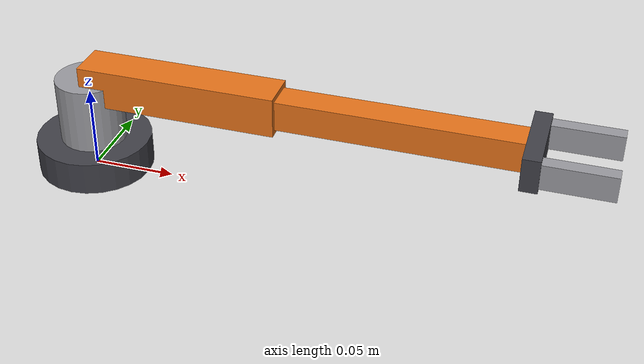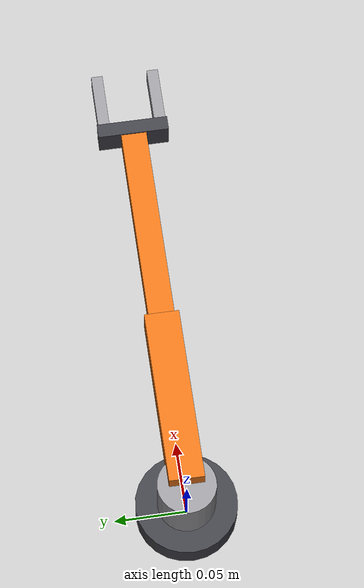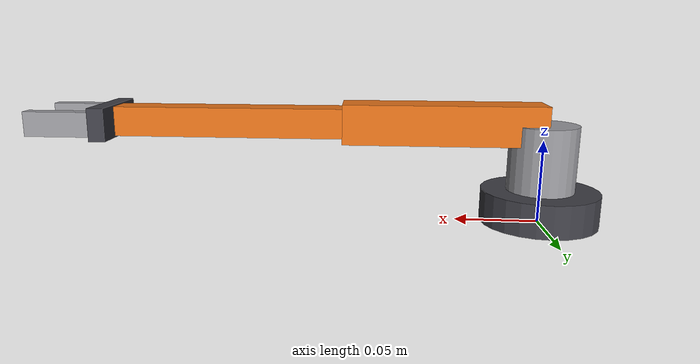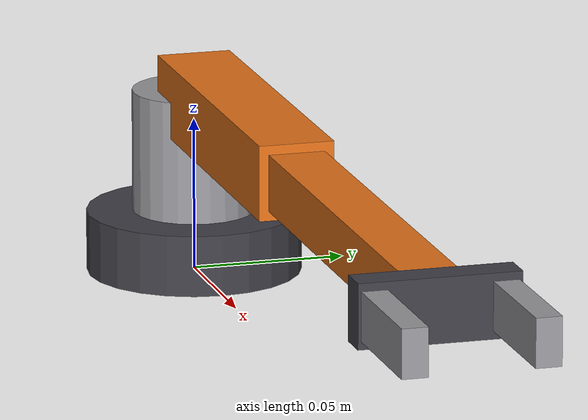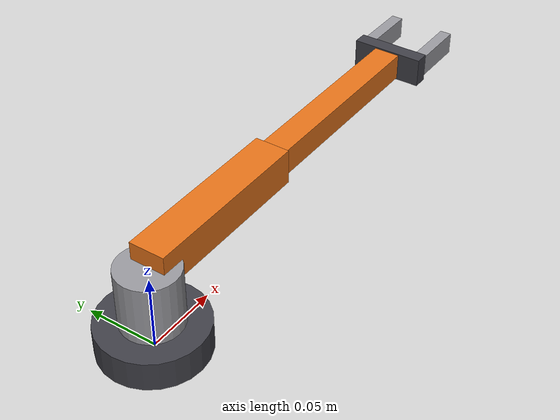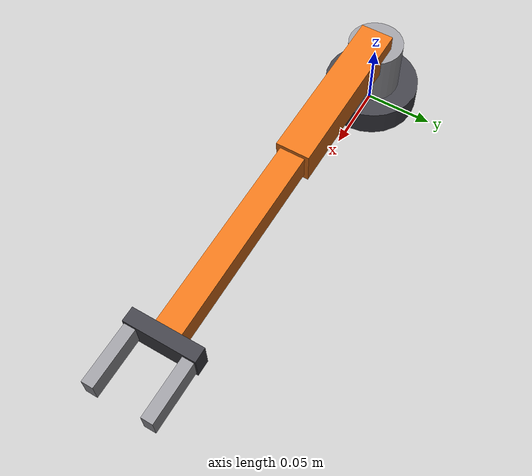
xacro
<?xml version="1.0"?>
<robot xmlns:xacro="http://www.ros.org/wiki/xacro" name="bench_arm">

  <!-- mm -> m at the boundary -->
  <xacro:property name="base_h" value="${60/1000}"/>
  <xacro:property name="r_off"  value="${0/1000}"/>
  <xacro:property name="L1"     value="${120/1000}"/>
  <xacro:property name="L2"     value="${140/1000}"/>

  <material name="dark"><color rgba="0.25 0.25 0.28 1"/></material>
  <material name="orange"><color rgba="0.90 0.45 0.10 1"/></material>
  <material name="grey"><color rgba="0.60 0.60 0.62 1"/></material>

  <!-- Pedestal, fixed to the table -->
  <link name="base_link">
    <visual>
      <origin xyz="0 0 0.01"/>
      <geometry><cylinder radius="0.035" length="0.02"/></geometry>
      <material name="dark"/>
    </visual>
    <!-- Placeholder mass properties (not measured) - just enough for tools
         downstream of RViz (Gazebo/MoveIt, M9 backlog) to have something
         non-degenerate to work with. -->
    <inertial>
      <origin xyz="0 0 0.01"/>
      <mass value="0.15"/>
      <inertia ixx="0.000051" ixy="0" ixz="0" iyy="0.000051" iyz="0" izz="0.000092"/>
    </inertial>
  </link>

  <!-- q0: yaw about Z, CCW positive viewed from above -->
  <joint name="base" type="revolute">
    <parent link="base_link"/>
    <child link="yaw_link"/>
    <origin xyz="0 0 0"/>
    <axis xyz="0 0 1"/>
    <limit lower="${radians(-90)}" upper="${radians(90)}" effort="1.0" velocity="${radians(120)}"/>
  </joint>

  <link name="yaw_link">
    <visual>
      <origin xyz="0 0 ${base_h/2}"/>
      <geometry><cylinder radius="0.02" length="${base_h}"/></geometry>
      <material name="grey"/>
    </visual>
    <inertial>
      <origin xyz="0 0 ${base_h/2}"/>
      <mass value="0.04"/>
      <inertia ixx="0.000016" ixy="0" ixz="0" iyy="0.000016" iyz="0" izz="0.000008"/>
    </inertial>
  </link>

  <joint name="shoulder" type="revolute">
    <parent link="yaw_link"/>
    <child link="upper_arm"/>
    <origin xyz="${r_off} 0 ${base_h}"/>
    <axis xyz="0 -1 0"/>
    <limit lower="${radians(0)}" upper="${radians(120)}" effort="1.0" velocity="${radians(120)}"/>
  </joint>

  <link name="upper_arm">
    <visual>
      <origin xyz="${L1/2} 0 0"/>
      <geometry><box size="${L1} 0.024 0.024"/></geometry>
      <material name="orange"/>
    </visual>
    <inertial>
      <origin xyz="${L1/2} 0 0"/>
      <mass value="0.05"/>
      <inertia ixx="0.0000048" ixy="0" ixz="0" iyy="0.0000624" iyz="0" izz="0.0000624"/>
    </inertial>
  </link>

  <!-- The bench rig has no elbow servo: the forearm is rigidly straight
       (q2 = 0). Kept as its own fixed joint so a future arm with a real
       elbow only flips this to revolute. -->
  <joint name="elbow_fixed" type="fixed">
    <parent link="upper_arm"/>
    <child link="forearm"/>
    <origin xyz="${L1} 0 0"/>
  </joint>

  <link name="forearm">
    <visual>
      <origin xyz="${L2/2} 0 0"/>
      <geometry><box size="${L2} 0.018 0.018"/></geometry>
      <material name="orange"/>
    </visual>
    <inertial>
      <origin xyz="${L2/2} 0 0"/>
      <mass value="0.04"/>
      <inertia ixx="0.0000022" ixy="0" ixz="0" iyy="0.0000664" iyz="0" izz="0.0000664"/>
    </inertial>
  </link>

  <!-- Tool point: the (x, y, z) that docs/kinematics.md FK/IK talks about. -->
  <joint name="tool_fixed" type="fixed">
    <parent link="forearm"/>
    <child link="tool_link"/>
    <origin xyz="${L2} 0 0"/>
  </joint>

  <link name="tool_link">
    <!-- palm -->
    <visual>
      <origin xyz="0.005 0 0"/>
      <geometry><box size="0.01 0.05 0.02"/></geometry>
      <material name="dark"/>
    </visual>
    <!-- fixed jaw, +Y side -->
    <visual>
      <origin xyz="0.03 0.02 0"/>
      <geometry><box size="0.04 0.008 0.015"/></geometry>
      <material name="grey"/>
    </visual>
    <inertial>
      <origin xyz="0 0 0"/>
      <mass value="0.03"/>
      <inertia ixx="0.00001" ixy="0" ixz="0" iyy="0.0000073" iyz="0" izz="0.0000153"/>
    </inertial>
  </link>

  <!-- grip: decorative jaw. 0 deg = open, 60 deg = swung toward the fixed
       jaw = closed, mirroring the device mapping (grip pct 100 = max_deg). -->
  <joint name="grip" type="revolute">
    <parent link="tool_link"/>
    <child link="jaw"/>
    <origin xyz="0.01 -0.02 0"/>
    <axis xyz="0 0 1"/>
    <limit lower="${radians(0)}" upper="${radians(60)}" effort="1.0" velocity="${radians(120)}"/>
  </joint>

  <link name="jaw">
    <visual>
      <origin xyz="0.02 0 0"/>
      <geometry><box size="0.04 0.008 0.015"/></geometry>
      <material name="grey"/>
    </visual>
    <inertial>
      <origin xyz="0.02 0 0"/>
      <mass value="0.01"/>
      <inertia ixx="0.00000024" ixy="0" ixz="0" iyy="0.00000152" iyz="0" izz="0.00000139"/>
    </inertial>
  </link>

</robot>
